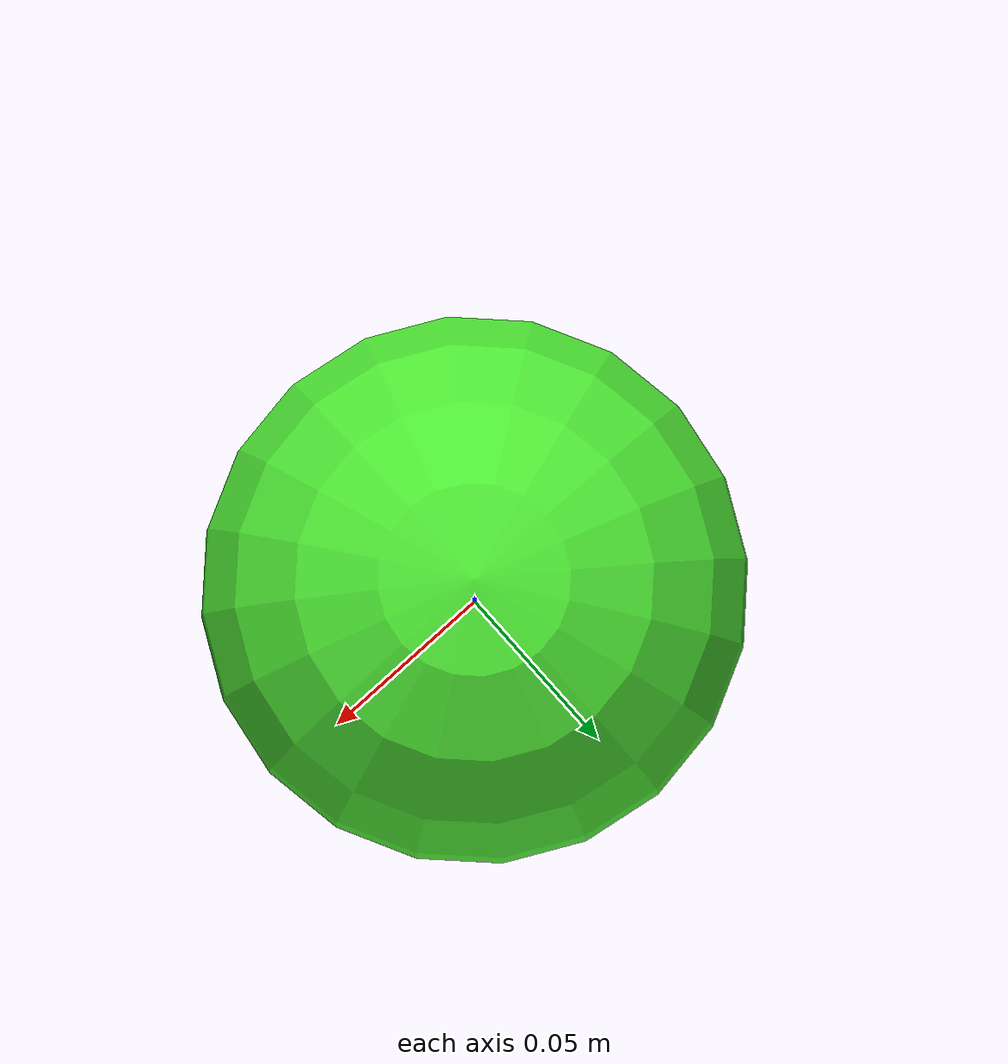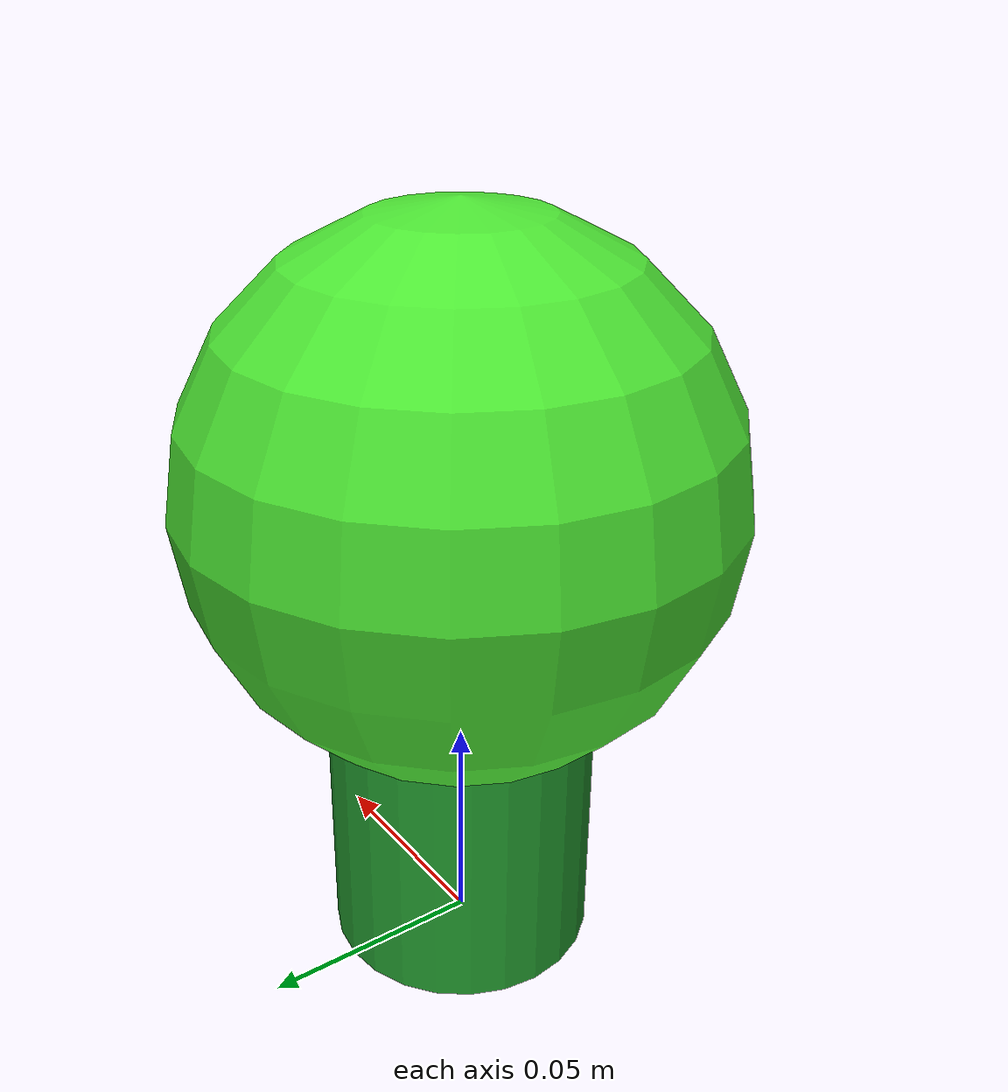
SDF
<?xml version='1.0'?>
<sdf version='1.6'>
  <model name='herb_plant'>
    <link name='link_herb'>
      <pose frame=''>0 0 0.05 0 0 0</pose>
      <inertial>
        <mass>1e-06</mass>
        <inertia>
          <ixx>0.01</ixx>
          <ixy>0</ixy>
          <ixz>0</ixz>
          <iyy>0.01</iyy>
          <iyz>0</iyz>
          <izz>0.01</izz>
        </inertia>
      </inertial>
      <gravity>1</gravity>
      <self_collide>0</self_collide>
      <kinematic>0</kinematic>
      <visual name='visual'>
        <pose frame=''>0 0 0 0 0 0</pose>
        <geometry>
          <!-- Erva pequena: cilindro fino + esfera no topo -->
          <cylinder>
            <radius>0.03</radius>
            <length>0.10</length>
          </cylinder>
        </geometry>
        <material>
          <lighting>1</lighting>
          <script>
            <uri>file://media/materials/scripts/gazebo.material</uri>
            <name>Gazebo/Green</name>
          </script>
          <!-- Verde claro brilhante -->
          <ambient>0.3 0.9 0.2 1</ambient>
          <diffuse>0.4 1.0 0.3 1</diffuse>
          <specular>0.1 0.5 0.1 1</specular>
          <emissive>0.1 0.4 0.05 1</emissive>
        </material>
        <cast_shadows>1</cast_shadows>
      </visual>
      <!-- Folhinhas da erva -->
      <visual name='leaves'>
        <pose frame=''>0 0 0.06 0 0 0</pose>
        <geometry>
          <sphere>
            <radius>0.06</radius>
          </sphere>
        </geometry>
        <material>
          <lighting>1</lighting>
          <ambient>0.2 0.8 0.1 1</ambient>
          <diffuse>0.3 0.9 0.2 1</diffuse>
          <emissive>0.1 0.3 0.05 1</emissive>
        </material>
      </visual>
    </link>
    <static>1</static>
    <allow_auto_disable>1</allow_auto_disable>
  </model>
</sdf>
